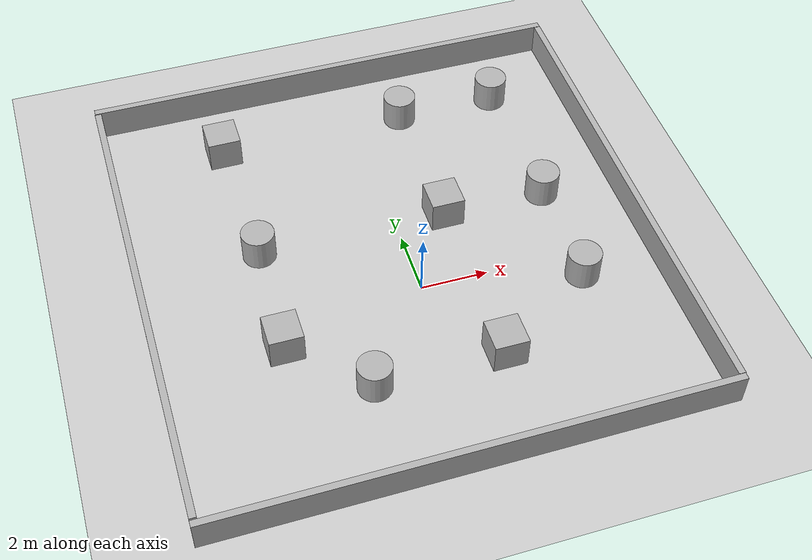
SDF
<sdf version='1.9'>
  <world name='empty'>
    <physics name='1ms' type='ignored'>
      <max_step_size>0.001</max_step_size>
      <real_time_factor>1</real_time_factor>
      <real_time_update_rate>1000</real_time_update_rate>
    </physics>
    <plugin name='gz::sim::systems::Physics' filename='ignition-gazebo-physics-system'/>
    <plugin name='gz::sim::systems::UserCommands' filename='ignition-gazebo-user-commands-system'/>
    <plugin name='gz::sim::systems::SceneBroadcaster' filename='ignition-gazebo-scene-broadcaster-system'/>
    <plugin name='gz::sim::systems::Contact' filename='ignition-gazebo-contact-system'/>
    <plugin name='gz::sim::systems::Sensors' filename='ignition-gazebo-sensors-system'>
      <render_engine>ogre2</render_engine>
    </plugin>
    <plugin name='gz::sim::systems::Imu' filename='ignition-gazebo-imu-system'/>
    <gravity>0 0 -9.8</gravity>
    <magnetic_field>6e-06 2.3e-05 -4.2e-05</magnetic_field>
    <atmosphere type='adiabatic'/>
    <scene>
      <ambient>0.4 0.4 0.4 1</ambient>
      <background>0.7 0.7 0.7 1</background>
      <shadows>true</shadows>
    </scene>
    <model name='ground_plane'>
      <static>true</static>
      <link name='link'>
        <collision name='collision'>
          <geometry>
            <plane>
              <normal>0 0 1</normal>
              <size>100 100</size>
            </plane>
          </geometry>
          <surface>
            <friction>
              <ode/>
            </friction>
            <bounce/>
            <contact/>
          </surface>
        </collision>
        <visual name='visual'>
          <geometry>
            <plane>
              <normal>0 0 1</normal>
              <size>100 100</size>
            </plane>
          </geometry>
          <material>
            <ambient>0.8 0.8 0.8 1</ambient>
            <diffuse>0.8 0.8 0.8 1</diffuse>
            <specular>0.8 0.8 0.8 1</specular>
          </material>
        </visual>
        <pose>0 0 0 0 -0 0</pose>
        <inertial>
          <pose>0 0 0 0 -0 0</pose>
          <mass>1</mass>
          <inertia>
            <ixx>1</ixx>
            <ixy>0</ixy>
            <ixz>0</ixz>
            <iyy>1</iyy>
            <iyz>0</iyz>
            <izz>1</izz>
          </inertia>
        </inertial>
        <enable_wind>false</enable_wind>
      </link>
      <pose>0 0 0 0 -0 0</pose>
      <self_collide>false</self_collide>
    </model>
    <model name='box'>
      <pose>1.49343 2.54412 0.499999 0 -0 0</pose>
      <link name='box_link'>
        <inertial>
          <inertia>
            <ixx>0.16666</ixx>
            <ixy>0</ixy>
            <ixz>0</ixz>
            <iyy>0.16666</iyy>
            <iyz>0</iyz>
            <izz>0.16666</izz>
          </inertia>
          <mass>1</mass>
          <pose>0 0 0 0 -0 0</pose>
        </inertial>
        <collision name='box_collision'>
          <geometry>
            <box>
              <size>1 1 1</size>
            </box>
          </geometry>
          <surface>
            <friction>
              <ode/>
            </friction>
            <bounce/>
            <contact/>
          </surface>
        </collision>
        <visual name='box_visual'>
          <geometry>
            <box>
              <size>1 1 1</size>
            </box>
          </geometry>
          <material>
            <ambient>0.3 0.3 0.3 1</ambient>
            <diffuse>0.7 0.7 0.7 1</diffuse>
            <specular>1 1 1 1</specular>
          </material>
        </visual>
        <pose>0 0 0 0 -0 0</pose>
        <enable_wind>false</enable_wind>
      </link>
      <static>false</static>
      <self_collide>false</self_collide>
    </model>
    <model name='cylinder'>
      <pose>4.61602 -0.910233 0.499999 0 0 0</pose>
      <link name='cylinder_link'>
        <inertial>
          <inertia>
            <ixx>0.14580000000000001</ixx>
            <ixy>0</ixy>
            <ixz>0</ixz>
            <iyy>0.14580000000000001</iyy>
            <iyz>0</iyz>
            <izz>0.125</izz>
          </inertia>
          <mass>1</mass>
          <pose>0 0 0 0 -0 0</pose>
        </inertial>
        <collision name='cylinder_collision'>
          <geometry>
            <cylinder>
              <radius>0.5</radius>
              <length>1</length>
            </cylinder>
          </geometry>
          <surface>
            <friction>
              <ode/>
            </friction>
            <bounce/>
            <contact/>
          </surface>
        </collision>
        <visual name='cylinder_visual'>
          <geometry>
            <cylinder>
              <radius>0.5</radius>
              <length>1</length>
            </cylinder>
          </geometry>
          <material>
            <ambient>0.3 0.3 0.3 1</ambient>
            <diffuse>0.7 0.7 0.7 1</diffuse>
            <specular>1 1 1 1</specular>
          </material>
        </visual>
        <pose>0 0 0 0 -0 0</pose>
        <enable_wind>false</enable_wind>
      </link>
      <static>false</static>
      <self_collide>false</self_collide>
    </model>
    <model name='cylinder_0'>
      <pose>4.66605 2.49667 0.499999 -0 -0 0</pose>
      <link name='cylinder_link'>
        <inertial>
          <inertia>
            <ixx>0.14580000000000001</ixx>
            <ixy>0</ixy>
            <ixz>0</ixz>
            <iyy>0.14580000000000001</iyy>
            <iyz>0</iyz>
            <izz>0.125</izz>
          </inertia>
          <mass>1</mass>
          <pose>0 0 0 0 -0 0</pose>
        </inertial>
        <collision name='cylinder_collision'>
          <geometry>
            <cylinder>
              <radius>0.5</radius>
              <length>1</length>
            </cylinder>
          </geometry>
          <surface>
            <friction>
              <ode/>
            </friction>
            <bounce/>
            <contact/>
          </surface>
        </collision>
        <visual name='cylinder_visual'>
          <geometry>
            <cylinder>
              <radius>0.5</radius>
              <length>1</length>
            </cylinder>
          </geometry>
          <material>
            <ambient>0.3 0.3 0.3 1</ambient>
            <diffuse>0.7 0.7 0.7 1</diffuse>
            <specular>1 1 1 1</specular>
          </material>
        </visual>
        <pose>0 0 0 0 -0 0</pose>
        <enable_wind>false</enable_wind>
      </link>
      <static>false</static>
      <self_collide>false</self_collide>
    </model>
    <model name='cylinder_1'>
      <pose>-2.30206 -2.95626 0.499999 -0 -0 -0</pose>
      <link name='cylinder_link'>
        <inertial>
          <inertia>
            <ixx>0.14580000000000001</ixx>
            <ixy>0</ixy>
            <ixz>0</ixz>
            <iyy>0.14580000000000001</iyy>
            <iyz>0</iyz>
            <izz>0.125</izz>
          </inertia>
          <mass>1</mass>
          <pose>0 0 0 0 -0 0</pose>
        </inertial>
        <collision name='cylinder_collision'>
          <geometry>
            <cylinder>
              <radius>0.5</radius>
              <length>1</length>
            </cylinder>
          </geometry>
          <surface>
            <friction>
              <ode/>
            </friction>
            <bounce/>
            <contact/>
          </surface>
        </collision>
        <visual name='cylinder_visual'>
          <geometry>
            <cylinder>
              <radius>0.5</radius>
              <length>1</length>
            </cylinder>
          </geometry>
          <material>
            <ambient>0.3 0.3 0.3 1</ambient>
            <diffuse>0.7 0.7 0.7 1</diffuse>
            <specular>1 1 1 1</specular>
          </material>
        </visual>
        <pose>0 0 0 0 -0 0</pose>
        <enable_wind>false</enable_wind>
      </link>
      <static>false</static>
      <self_collide>false</self_collide>
    </model>
    <model name='box_0'>
      <pose>1.46751 -2.91634 0.499999 -0 -0 -0</pose>
      <link name='box_link'>
        <inertial>
          <inertia>
            <ixx>0.16666</ixx>
            <ixy>0</ixy>
            <ixz>0</ixz>
            <iyy>0.16666</iyy>
            <iyz>0</iyz>
            <izz>0.16666</izz>
          </inertia>
          <mass>1</mass>
          <pose>0 0 0 0 -0 0</pose>
        </inertial>
        <collision name='box_collision'>
          <geometry>
            <box>
              <size>1 1 1</size>
            </box>
          </geometry>
          <surface>
            <friction>
              <ode/>
            </friction>
            <bounce/>
            <contact/>
          </surface>
        </collision>
        <visual name='box_visual'>
          <geometry>
            <box>
              <size>1 1 1</size>
            </box>
          </geometry>
          <material>
            <ambient>0.3 0.3 0.3 1</ambient>
            <diffuse>0.7 0.7 0.7 1</diffuse>
            <specular>1 1 1 1</specular>
          </material>
        </visual>
        <pose>0 0 0 0 -0 0</pose>
        <enable_wind>false</enable_wind>
      </link>
      <static>false</static>
      <self_collide>false</self_collide>
    </model>
    <model name='box_1'>
      <pose>-4.34822 -0.964002 0.5 0 -0 -0</pose>
      <link name='box_link'>
        <inertial>
          <inertia>
            <ixx>0.16666</ixx>
            <ixy>0</ixy>
            <ixz>0</ixz>
            <iyy>0.16666</iyy>
            <iyz>0</iyz>
            <izz>0.16666</izz>
          </inertia>
          <mass>1</mass>
          <pose>0 0 0 0 -0 0</pose>
        </inertial>
        <collision name='box_collision'>
          <geometry>
            <box>
              <size>1 1 1</size>
            </box>
          </geometry>
          <surface>
            <friction>
              <ode/>
            </friction>
            <bounce/>
            <contact/>
          </surface>
        </collision>
        <visual name='box_visual'>
          <geometry>
            <box>
              <size>1 1 1</size>
            </box>
          </geometry>
          <material>
            <ambient>0.3 0.3 0.3 1</ambient>
            <diffuse>0.7 0.7 0.7 1</diffuse>
            <specular>1 1 1 1</specular>
          </material>
        </visual>
        <pose>0 0 0 0 -0 0</pose>
        <enable_wind>false</enable_wind>
      </link>
      <static>false</static>
      <self_collide>false</self_collide>
    </model>
    <model name='cylinder_2'>
      <pose>-4.20214 2.60336 0.499999 0 0 -0</pose>
      <link name='cylinder_link'>
        <inertial>
          <inertia>
            <ixx>0.14580000000000001</ixx>
            <ixy>0</ixy>
            <ixz>0</ixz>
            <iyy>0.14580000000000001</iyy>
            <iyz>0</iyz>
            <izz>0.125</izz>
          </inertia>
          <mass>1</mass>
          <pose>0 0 0 0 -0 0</pose>
        </inertial>
        <collision name='cylinder_collision'>
          <geometry>
            <cylinder>
              <radius>0.5</radius>
              <length>1</length>
            </cylinder>
          </geometry>
          <surface>
            <friction>
              <ode/>
            </friction>
            <bounce/>
            <contact/>
          </surface>
        </collision>
        <visual name='cylinder_visual'>
          <geometry>
            <cylinder>
              <radius>0.5</radius>
              <length>1</length>
            </cylinder>
          </geometry>
          <material>
            <ambient>0.3 0.3 0.3 1</ambient>
            <diffuse>0.7 0.7 0.7 1</diffuse>
            <specular>1 1 1 1</specular>
          </material>
        </visual>
        <pose>0 0 0 0 -0 0</pose>
        <enable_wind>false</enable_wind>
      </link>
      <static>false</static>
      <self_collide>false</self_collide>
    </model>
    <model name='cylinder_3'>
      <pose>1.49526 6.99508 0.499999 0 0 0</pose>
      <link name='cylinder_link'>
        <inertial>
          <inertia>
            <ixx>0.14580000000000001</ixx>
            <ixy>0</ixy>
            <ixz>0</ixz>
            <iyy>0.14580000000000001</iyy>
            <iyz>0</iyz>
            <izz>0.125</izz>
          </inertia>
          <mass>1</mass>
          <pose>0 0 0 0 -0 0</pose>
        </inertial>
        <collision name='cylinder_collision'>
          <geometry>
            <cylinder>
              <radius>0.5</radius>
              <length>1</length>
            </cylinder>
          </geometry>
          <surface>
            <friction>
              <ode/>
            </friction>
            <bounce/>
            <contact/>
          </surface>
        </collision>
        <visual name='cylinder_visual'>
          <geometry>
            <cylinder>
              <radius>0.5</radius>
              <length>1</length>
            </cylinder>
          </geometry>
          <material>
            <ambient>0.3 0.3 0.3 1</ambient>
            <diffuse>0.7 0.7 0.7 1</diffuse>
            <specular>1 1 1 1</specular>
          </material>
        </visual>
        <pose>0 0 0 0 -0 0</pose>
        <enable_wind>false</enable_wind>
      </link>
      <static>false</static>
      <self_collide>false</self_collide>
    </model>
    <model name='cylinder_4'>
      <pose>4.59576 6.99508 0.499999 0 -0 -0</pose>
      <link name='cylinder_link'>
        <inertial>
          <inertia>
            <ixx>0.14580000000000001</ixx>
            <ixy>0</ixy>
            <ixz>0</ixz>
            <iyy>0.14580000000000001</iyy>
            <iyz>0</iyz>
            <izz>0.125</izz>
          </inertia>
          <mass>1</mass>
          <pose>0 0 0 0 -0 0</pose>
        </inertial>
        <collision name='cylinder_collision'>
          <geometry>
            <cylinder>
              <radius>0.5</radius>
              <length>1</length>
            </cylinder>
          </geometry>
          <surface>
            <friction>
              <ode/>
            </friction>
            <bounce/>
            <contact/>
          </surface>
        </collision>
        <visual name='cylinder_visual'>
          <geometry>
            <cylinder>
              <radius>0.5</radius>
              <length>1</length>
            </cylinder>
          </geometry>
          <material>
            <ambient>0.3 0.3 0.3 1</ambient>
            <diffuse>0.7 0.7 0.7 1</diffuse>
            <specular>1 1 1 1</specular>
          </material>
        </visual>
        <pose>0 0 0 0 -0 0</pose>
        <enable_wind>false</enable_wind>
      </link>
      <static>false</static>
      <self_collide>false</self_collide>
    </model>
    <model name='box_2'>
      <pose>-7.8555 1.46311 0.499999 0 -0 -0</pose>
      <link name='box_link'>
        <inertial>
          <inertia>
            <ixx>0.16666</ixx>
            <ixy>0</ixy>
            <ixz>0</ixz>
            <iyy>0.16666</iyy>
            <iyz>0</iyz>
            <izz>0.16666</izz>
          </inertia>
          <mass>1</mass>
          <pose>0 0 0 0 -0 0</pose>
        </inertial>
        <collision name='box_collision'>
          <geometry>
            <box>
              <size>0.2 15 1</size>
            </box>
          </geometry>
          <surface>
            <friction>
              <ode/>
            </friction>
            <bounce/>
            <contact/>
          </surface>
        </collision>
        <visual name='box_visual'>
          <geometry>
            <box>
              <size>0.2 15 1</size>
            </box>
          </geometry>
          <material>
            <ambient>0.3 0.3 0.3 1</ambient>
            <diffuse>0.7 0.7 0.7 1</diffuse>
            <specular>1 1 1 1</specular>
          </material>
        </visual>
        <pose>0 0 0 0 -0 0</pose>
        <enable_wind>false</enable_wind>
      </link>
      <static>false</static>
      <self_collide>false</self_collide>
    </model>
    <model name='box_3'>
      <pose>6.96546 1.42517 0.5 0 0 -0</pose>
      <link name='box_link'>
        <inertial>
          <inertia>
            <ixx>0.16666</ixx>
            <ixy>0</ixy>
            <ixz>0</ixz>
            <iyy>0.16666</iyy>
            <iyz>0</iyz>
            <izz>0.16666</izz>
          </inertia>
          <mass>1</mass>
          <pose>0 0 0 0 -0 0</pose>
        </inertial>
        <collision name='box_collision'>
          <geometry>
            <box>
              <size>0.2 15 1</size>
            </box>
          </geometry>
          <surface>
            <friction>
              <ode/>
            </friction>
            <bounce/>
            <contact/>
          </surface>
        </collision>
        <visual name='box_visual'>
          <geometry>
            <box>
              <size>0.2 15 1</size>
            </box>
          </geometry>
          <material>
            <ambient>0.3 0.3 0.3 1</ambient>
            <diffuse>0.7 0.7 0.7 1</diffuse>
            <specular>1 1 1 1</specular>
          </material>
        </visual>
        <pose>0 0 0 0 -0 0</pose>
        <enable_wind>false</enable_wind>
      </link>
      <static>false</static>
      <self_collide>false</self_collide>
    </model>
    <model name='box_4'>
      <pose>-0.440374 9.06905 0.5 1e-06 0 -0.003852</pose>
      <link name='box_link'>
        <inertial>
          <inertia>
            <ixx>0.16666</ixx>
            <ixy>0</ixy>
            <ixz>0</ixz>
            <iyy>0.16666</iyy>
            <iyz>0</iyz>
            <izz>0.16666</izz>
          </inertia>
          <mass>1</mass>
          <pose>0 0 0 0 -0 0</pose>
        </inertial>
        <collision name='box_collision'>
          <geometry>
            <box>
              <size>15 0.2 1</size>
            </box>
          </geometry>
          <surface>
            <friction>
              <ode/>
            </friction>
            <bounce/>
            <contact/>
          </surface>
        </collision>
        <visual name='box_visual'>
          <geometry>
            <box>
              <size>15 0.2 1</size>
            </box>
          </geometry>
          <material>
            <ambient>0.3 0.3 0.3 1</ambient>
            <diffuse>0.7 0.7 0.7 1</diffuse>
            <specular>1 1 1 1</specular>
          </material>
        </visual>
        <pose>0 0 0 0 -0 0</pose>
        <enable_wind>false</enable_wind>
      </link>
      <static>false</static>
      <self_collide>false</self_collide>
    </model>
    <model name='box_5'>
      <pose>-0.456012 -6.18313 0.499999 2e-06 0 -0.000151</pose>
      <link name='box_link'>
        <inertial>
          <inertia>
            <ixx>0.16666</ixx>
            <ixy>0</ixy>
            <ixz>0</ixz>
            <iyy>0.16666</iyy>
            <iyz>0</iyz>
            <izz>0.16666</izz>
          </inertia>
          <mass>1</mass>
          <pose>0 0 0 0 -0 0</pose>
        </inertial>
        <collision name='box_collision'>
          <geometry>
            <box>
              <size>15 0.2 1</size>
            </box>
          </geometry>
          <surface>
            <friction>
              <ode/>
            </friction>
            <bounce/>
            <contact/>
          </surface>
        </collision>
        <visual name='box_visual'>
          <geometry>
            <box>
              <size>15 0.2 1</size>
            </box>
          </geometry>
          <material>
            <ambient>0.3 0.3 0.3 1</ambient>
            <diffuse>0.7 0.7 0.7 1</diffuse>
            <specular>1 1 1 1</specular>
          </material>
        </visual>
        <pose>0 0 0 0 -0 0</pose>
        <enable_wind>false</enable_wind>
      </link>
      <static>false</static>
      <self_collide>false</self_collide>
    </model>
    <model name='box_6'>
      <pose>-4.32029 7.00528 0.5 0 -0 0</pose>
      <link name='box_link'>
        <inertial>
          <inertia>
            <ixx>0.16666</ixx>
            <ixy>0</ixy>
            <ixz>0</ixz>
            <iyy>0.16666</iyy>
            <iyz>0</iyz>
            <izz>0.16666</izz>
          </inertia>
          <mass>1</mass>
          <pose>0 0 0 0 -0 0</pose>
        </inertial>
        <collision name='box_collision'>
          <geometry>
            <box>
              <size>1 1 1</size>
            </box>
          </geometry>
          <surface>
            <friction>
              <ode/>
            </friction>
            <bounce/>
            <contact/>
          </surface>
        </collision>
        <visual name='box_visual'>
          <geometry>
            <box>
              <size>1 1 1</size>
            </box>
          </geometry>
          <material>
            <ambient>0.3 0.3 0.3 1</ambient>
            <diffuse>0.7 0.7 0.7 1</diffuse>
            <specular>1 1 1 1</specular>
          </material>
        </visual>
        <pose>0 0 0 0 -0 0</pose>
        <enable_wind>false</enable_wind>
      </link>
      <static>false</static>
      <self_collide>false</self_collide>
    </model>
    <light name='sun' type='directional'>
      <pose>0 0 10 0 -0 0</pose>
      <cast_shadows>true</cast_shadows>
      <intensity>1</intensity>
      <direction>-0.5 0.1 -0.9</direction>
      <diffuse>0.8 0.8 0.8 1</diffuse>
      <specular>0.2 0.2 0.2 1</specular>
      <attenuation>
        <range>1000</range>
        <linear>0.01</linear>
        <constant>0.90000000000000002</constant>
        <quadratic>0.001</quadratic>
      </attenuation>
      <spot>
        <inner_angle>0</inner_angle>
        <outer_angle>0</outer_angle>
        <falloff>0</falloff>
      </spot>
    </light>
  </world>
</sdf>
